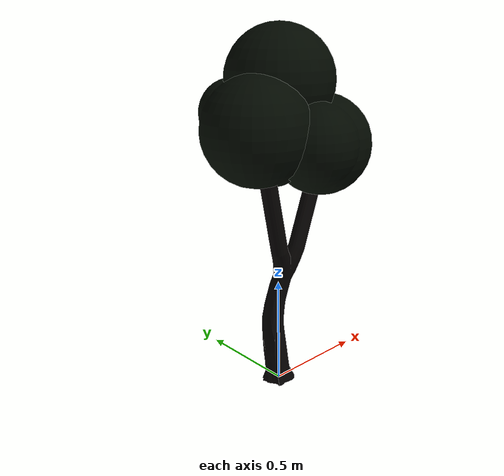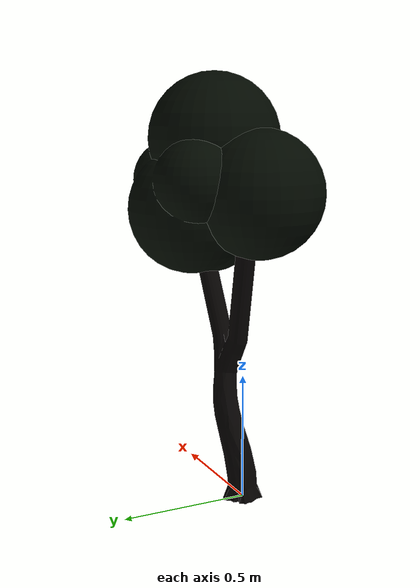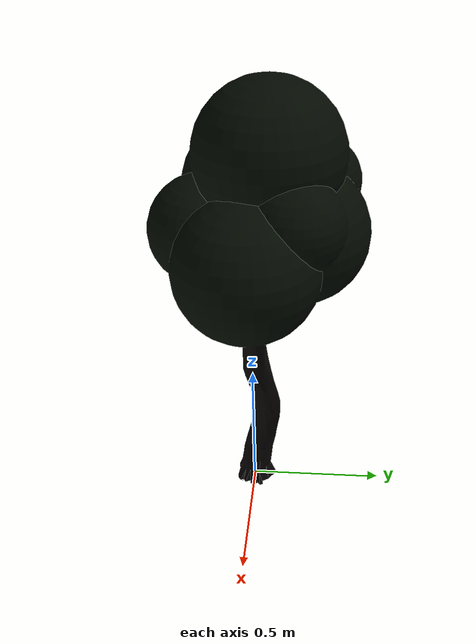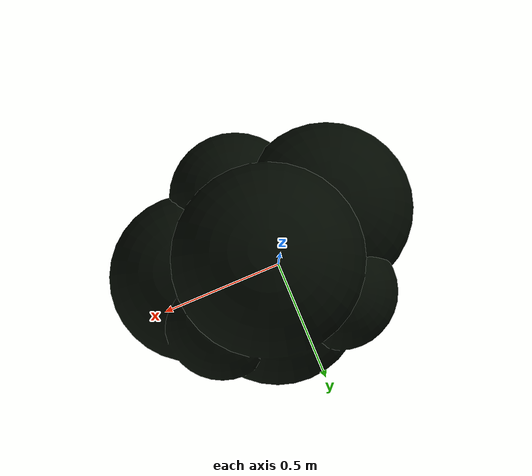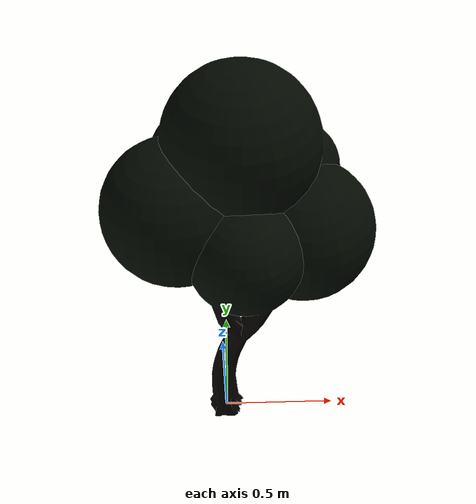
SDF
<?xml version="1.0" ?>
<sdf version="1.9">
  <model name="tree1">
    <static>true</static>
    <link name="tree_link">
      <visual name="tree_visual">
        <geometry>
          <mesh>
            <uri>model://tree1/meshes/tree_a.dae</uri>
            <scale>0.1 0.1 0.1</scale>
          </mesh>
        </geometry>
      </visual>

      <!-- Simple collision for now (same mesh). You can swap to a low-poly later. -->
      <collision name="tree_collision">
        <geometry>
          <mesh>
            <uri>model://tree1/meshes/tree_a.dae</uri>
            <scale>0.1 0.1 0.1</scale>
          </mesh>
        </geometry>
      </collision>
    </link>
  </model>
</sdf>
